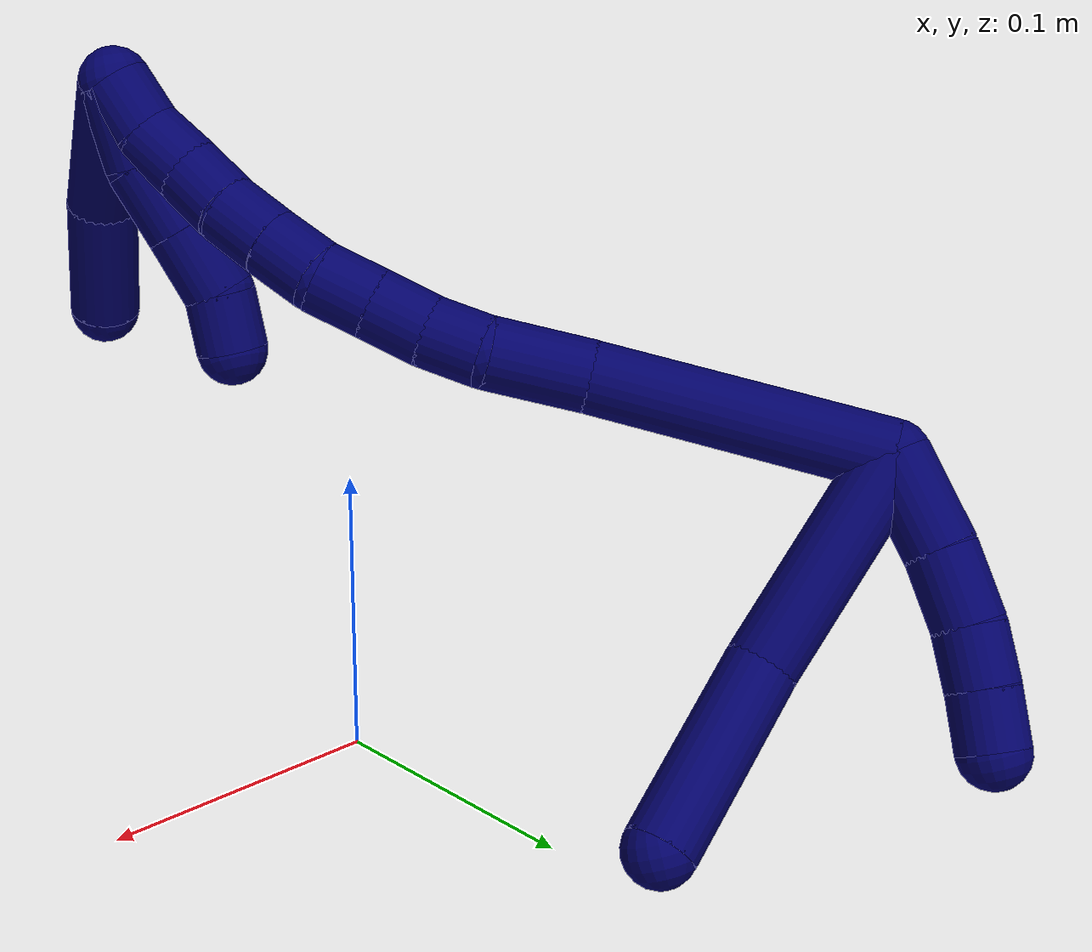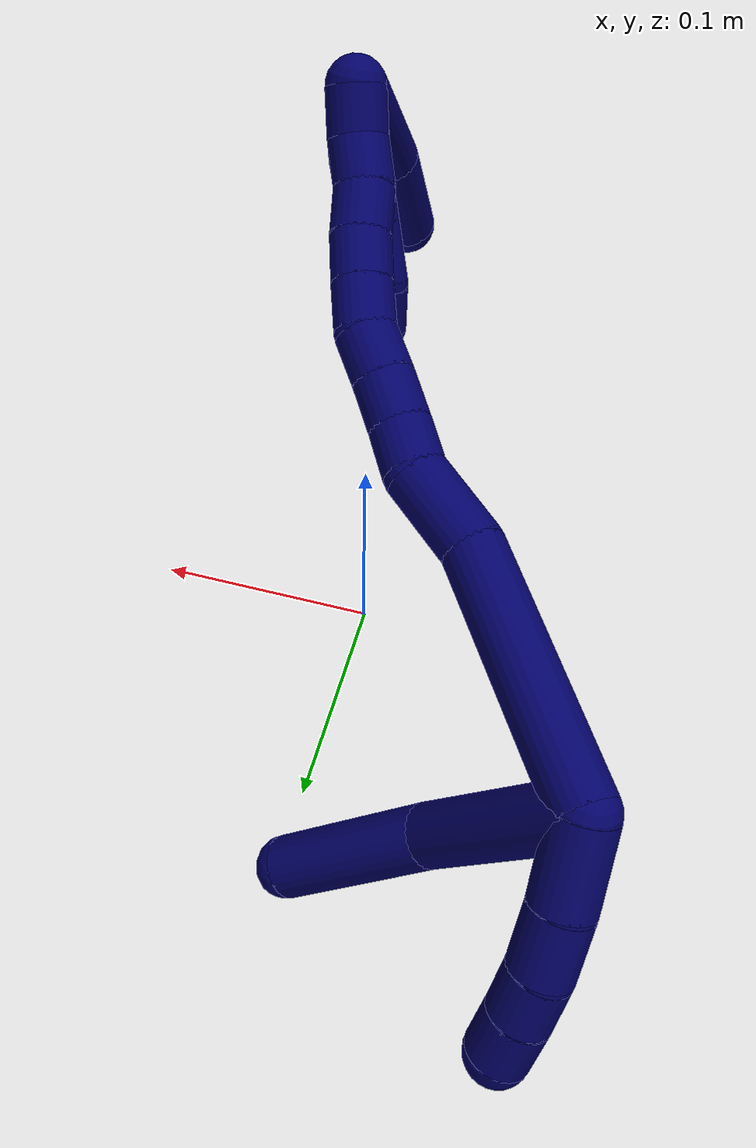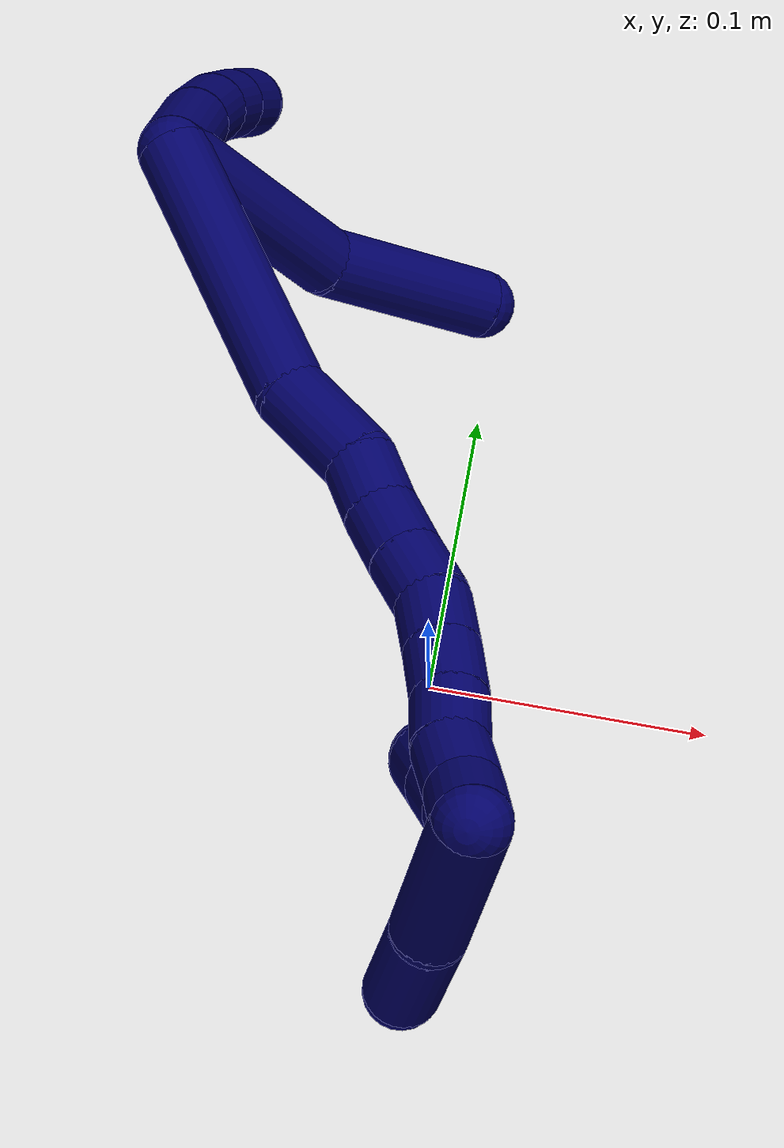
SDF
<sdf version="1.7">
 <world name="default">
  <model name="photoneo_s_sensor">
   <static>1</static>
   <pose>0 0 2 1.57079 1.57079 3.14159</pose>
   <link name="link">
    <inertial><mass>0.1</mass></inertial>
    <sensor name="sensor" type="depth">
     <update_rate>30</update_rate>
     <camera>
      <horizontal_fov>1.22</horizontal_fov>
      <image><width>1920</width><height>1200</height><format>B8G8R8</format></image>
      <clip><near>0.1</near><far>4</far></clip>
      <depth_camera><output>points</output></depth_camera>
     </camera>
     <plugin name="camera_plugin" filename="libgazebo_ros_depth_camera.so">
      <baseline>0.2</baseline>
      <alwaysOn>1</alwaysOn>
      <updateRate>0.0</updateRate>
      <cameraName>camera_ir</cameraName>
      <imageTopicName>/camera/color/image_raw</imageTopicName>
      <cameraInfoTopicName>/camera/color/camera_info</cameraInfoTopicName>
      <depthImageTopicName>/camera/depth/image_raw</depthImageTopicName>
      <depthImageCameraInfoTopicName>/camera/depth/camera_info</depthImageCameraInfoTopicName>
      <pointCloudTopicName>/camera/depth/points</pointCloudTopicName>
      <frameName>fr_optical</frameName>
      <pointCloudCutoff>0.1</pointCloudCutoff>
      <pointCloudCutoffMax>2.0</pointCloudCutoffMax>
      <distortionK1>0</distortionK1>
      <distortionK2>0</distortionK2>
      <distortionK3>0</distortionK3>
      <distortionT1>0</distortionT1>
      <distortionT2>0</distortionT2>
      <CxPrime>0</CxPrime>
      <Cx>0</Cx>
      <Cy>0</Cy>
      <focalLength>0</focalLength>
      <hackBaseline>0</hackBaseline>
     </plugin>
    </sensor>
   </link>
  </model>
  <model name="bin">
   <static>1</static>
   <link name="bottom">
    <collision name="collision-bottom">
     <pose>0 0 -0.01 0 -0 0</pose>
     <geometry><box><size>0.8 0.6 0.02</size></box></geometry>
     <surface>
      <friction><ode><mu>100</mu><mu2>100</mu2></ode></friction>
      <contact><collide_bitmask>65535</collide_bitmask></contact>
     </surface>
    </collision>
   </link>
   <link name="west_wall">
    <collision name="collision-west_wall">
     <pose>-0.41 0 0.1 0 -0 0</pose>
     <geometry><box><size>0.02 0.6 0.2</size></box></geometry>
     <surface>
      <friction><ode><mu>100</mu><mu2>100</mu2></ode></friction>
      <contact><collide_bitmask>65535</collide_bitmask></contact>
     </surface>
    </collision>
   </link>
   <link name="east_wall">
    <collision name="collision-east_wall">
     <pose>0.41 0 0.1 0 -0 0</pose>
     <geometry><box><size>0.02 0.6 0.2</size></box></geometry>
     <surface>
      <friction><ode><mu>100</mu><mu2>100</mu2></ode></friction>
      <contact><collide_bitmask>65535</collide_bitmask></contact>
     </surface>
    </collision>
   </link>
   <link name="south_wall">
    <collision name="collision-south_wall">
     <pose>0 -0.31 0.1 0 -0 0</pose>
     <geometry><box><size>0.8 0.02 0.2</size></box></geometry>
     <surface>
      <friction><ode><mu>100</mu><mu2>100</mu2></ode></friction>
      <contact><collide_bitmask>65535</collide_bitmask></contact>
     </surface>
    </collision>
   </link>
   <link name="north_wall">
    <collision name="collision-north_wall">
     <pose>0 0.31 0.1 0 -0 0</pose>
     <geometry><box><size>0.8 0.02 0.2</size></box></geometry>
     <surface>
      <friction><ode><mu>100</mu><mu2>100</mu2></ode></friction>
      <contact><collide_bitmask>65535</collide_bitmask></contact>
     </surface>
    </collision>
   </link>
  </model>
  <model name="7">
   <static>0</static>
   <link name="7">
    <collision name="collision-cylinder-e_1_2_8">
     <pose>0.029284 0.003197 -0.027603 -3.02627 0.81162 -2.87449</pose>
     <geometry><cylinder><radius>0.0125</radius><length>0.080738</length></cylinder></geometry>
     <surface>
      <friction><ode><mu>1.16</mu><mu2>1.16</mu2><slip1>0</slip1><slip2>0</slip2></ode></friction>
      <contact><ode><kp>1e+06</kp><kd>1</kd><max_vel>0</max_vel><min_depth>0.001</min_depth></ode></contact>
     </surface>
    </collision>
    <visual name="visual-cylinder-e_1_2_8">
     <pose>0.029284 0.003197 -0.027603 -3.02627 0.81162 -2.87449</pose>
     <geometry><cylinder><radius>0.0125</radius><length>0.080738</length></cylinder></geometry>
     <material><ambient>0.003922 0 0.403922 1</ambient></material>
    </visual>
    <collision name="collision-cylinder-e_2_8_6">
     <pose>0.081639 0.019745 -0.077314 -2.59834 0.729098 -1.88065</pose>
     <geometry><cylinder><radius>0.0125</radius><length>0.069262</length></cylinder></geometry>
     <surface>
      <friction><ode><mu>1.16</mu><mu2>1.16</mu2><slip1>0</slip1><slip2>0</slip2></ode></friction>
      <contact><ode><kp>1e+06</kp><kd>1</kd><max_vel>0</max_vel><min_depth>0.001</min_depth></ode></contact>
     </surface>
    </collision>
    <visual name="visual-cylinder-e_2_8_6">
     <pose>0.081639 0.019745 -0.077314 -2.59834 0.729098 -1.88065</pose>
     <geometry><cylinder><radius>0.0125</radius><length>0.069262</length></cylinder></geometry>
     <material><ambient>0.003922 0 0.403922 1</ambient></material>
    </visual>
    <collision name="collision-cylinder-e_1_2_9">
     <pose>-0.003225 0.002914 -0.01648 -2.96658 -0.190364 1.65524</pose>
     <geometry><cylinder><radius>0.0125</radius><length>0.034087</length></cylinder></geometry>
     <surface>
      <friction><ode><mu>1.16</mu><mu2>1.16</mu2><slip1>0</slip1><slip2>0</slip2></ode></friction>
      <contact><ode><kp>1e+06</kp><kd>1</kd><max_vel>0</max_vel><min_depth>0.001</min_depth></ode></contact>
     </surface>
    </collision>
    <visual name="visual-cylinder-e_1_2_9">
     <pose>-0.003225 0.002914 -0.01648 -2.96658 -0.190364 1.65524</pose>
     <geometry><cylinder><radius>0.0125</radius><length>0.034087</length></cylinder></geometry>
     <material><ambient>0.003922 0 0.403922 1</ambient></material>
    </visual>
    <collision name="collision-cylinder-e_2_9_10">
     <pose>-0.007555 0.007797 -0.045553 -2.9865 -0.086473 1.01606</pose>
     <geometry><cylinder><radius>0.0125</radius><length>0.025587</length></cylinder></geometry>
     <surface>
      <friction><ode><mu>1.16</mu><mu2>1.16</mu2><slip1>0</slip1><slip2>0</slip2></ode></friction>
      <contact><ode><kp>1e+06</kp><kd>1</kd><max_vel>0</max_vel><min_depth>0.001</min_depth></ode></contact>
     </surface>
    </collision>
    <visual name="visual-cylinder-e_2_9_10">
     <pose>-0.007555 0.007797 -0.045553 -2.9865 -0.086473 1.01606</pose>
     <geometry><cylinder><radius>0.0125</radius><length>0.025587</length></cylinder></geometry>
     <material><ambient>0.003922 0 0.403922 1</ambient></material>
    </visual>
    <collision name="collision-cylinder-e_3_10_11">
     <pose>-0.008175 0.011171 -0.06816 -3.00224 0.047903 -0.661312</pose>
     <geometry><cylinder><radius>0.0125</radius><length>0.020249</length></cylinder></geometry>
     <surface>
      <friction><ode><mu>1.16</mu><mu2>1.16</mu2><slip1>0</slip1><slip2>0</slip2></ode></friction>
      <contact><ode><kp>1e+06</kp><kd>1</kd><max_vel>0</max_vel><min_depth>0.001</min_depth></ode></contact>
     </surface>
    </collision>
    <visual name="visual-cylinder-e_3_10_11">
     <pose>-0.008175 0.011171 -0.06816 -3.00224 0.047903 -0.661312</pose>
     <geometry><cylinder><radius>0.0125</radius><length>0.020249</length></cylinder></geometry>
     <material><ambient>0.003922 0 0.403922 1</ambient></material>
    </visual>
    <collision name="collision-cylinder-e_4_11_5">
     <pose>-0.006649 0.013835 -0.088079 -3.01507 0.103883 -1.37448</pose>
     <geometry><cylinder><radius>0.0125</radius><length>0.020077</length></cylinder></geometry>
     <surface>
      <friction><ode><mu>1.16</mu><mu2>1.16</mu2><slip1>0</slip1><slip2>0</slip2></ode></friction>
      <contact><ode><kp>1e+06</kp><kd>1</kd><max_vel>0</max_vel><min_depth>0.001</min_depth></ode></contact>
     </surface>
    </collision>
    <visual name="visual-cylinder-e_4_11_5">
     <pose>-0.006649 0.013835 -0.088079 -3.01507 0.103883 -1.37448</pose>
     <geometry><cylinder><radius>0.0125</radius><length>0.020077</length></cylinder></geometry>
     <material><ambient>0.003922 0 0.403922 1</ambient></material>
    </visual>
    <collision name="collision-cylinder-e_1_2_12">
     <pose>0.044587 -0.006308 0.024621 0.250816 1.0527 0.146239</pose>
     <geometry><cylinder><radius>0.0125</radius><length>0.102644</length></cylinder></geometry>
     <surface>
      <friction><ode><mu>1.16</mu><mu2>1.16</mu2><slip1>0</slip1><slip2>0</slip2></ode></friction>
      <contact><ode><kp>1e+06</kp><kd>1</kd><max_vel>0</max_vel><min_depth>0.001</min_depth></ode></contact>
     </surface>
    </collision>
    <visual name="visual-cylinder-e_1_2_12">
     <pose>0.044587 -0.006308 0.024621 0.250816 1.0527 0.146239</pose>
     <geometry><cylinder><radius>0.0125</radius><length>0.102644</length></cylinder></geometry>
     <material><ambient>0.003922 0 0.403922 1</ambient></material>
    </visual>
    <collision name="collision-cylinder-e_2_12_13">
     <pose>0.104871 -0.009478 0.057106 -0.379693 1.0761 -0.228358</pose>
     <geometry><cylinder><radius>0.0125</radius><length>0.035672</length></cylinder></geometry>
     <surface>
      <friction><ode><mu>1.16</mu><mu2>1.16</mu2><slip1>0</slip1><slip2>0</slip2></ode></friction>
      <contact><ode><kp>1e+06</kp><kd>1</kd><max_vel>0</max_vel><min_depth>0.001</min_depth></ode></contact>
     </surface>
    </collision>
    <visual name="visual-cylinder-e_2_12_13">
     <pose>0.104871 -0.009478 0.057106 -0.379693 1.0761 -0.228358</pose>
     <geometry><cylinder><radius>0.0125</radius><length>0.035672</length></cylinder></geometry>
     <material><ambient>0.003922 0 0.403922 1</ambient></material>
    </visual>
    <collision name="collision-cylinder-e_3_13_14">
     <pose>0.128908 -0.007802 0.070656 0.251941 0.957418 0.131257</pose>
     <geometry><cylinder><radius>0.0125</radius><length>0.020395</length></cylinder></geometry>
     <surface>
      <friction><ode><mu>1.16</mu><mu2>1.16</mu2><slip1>0</slip1><slip2>0</slip2></ode></friction>
      <contact><ode><kp>1e+06</kp><kd>1</kd><max_vel>0</max_vel><min_depth>0.001</min_depth></ode></contact>
     </surface>
    </collision>
    <visual name="visual-cylinder-e_3_13_14">
     <pose>0.128908 -0.007802 0.070656 0.251941 0.957418 0.131257</pose>
     <geometry><cylinder><radius>0.0125</radius><length>0.020395</length></cylinder></geometry>
     <material><ambient>0.003922 0 0.403922 1</ambient></material>
    </visual>
    <collision name="collision-cylinder-e_4_14_15">
     <pose>0.145142 -0.009535 0.083059 0.040083 0.865391 0.018516</pose>
     <geometry><cylinder><radius>0.0125</radius><length>0.020742</length></cylinder></geometry>
     <surface>
      <friction><ode><mu>1.16</mu><mu2>1.16</mu2><slip1>0</slip1><slip2>0</slip2></ode></friction>
      <contact><ode><kp>1e+06</kp><kd>1</kd><max_vel>0</max_vel><min_depth>0.001</min_depth></ode></contact>
     </surface>
    </collision>
    <visual name="visual-cylinder-e_4_14_15">
     <pose>0.145142 -0.009535 0.083059 0.040083 0.865391 0.018516</pose>
     <geometry><cylinder><radius>0.0125</radius><length>0.020742</length></cylinder></geometry>
     <material><ambient>0.003922 0 0.403922 1</ambient></material>
    </visual>
    <collision name="collision-cylinder-e_5_15_16">
     <pose>0.160748 -0.009644 0.096295 -0.024619 0.868792 -0.011423</pose>
     <geometry><cylinder><radius>0.0125</radius><length>0.020193</length></cylinder></geometry>
     <surface>
      <friction><ode><mu>1.16</mu><mu2>1.16</mu2><slip1>0</slip1><slip2>0</slip2></ode></friction>
      <contact><ode><kp>1e+06</kp><kd>1</kd><max_vel>0</max_vel><min_depth>0.001</min_depth></ode></contact>
     </surface>
    </collision>
    <visual name="visual-cylinder-e_5_15_16">
     <pose>0.160748 -0.009644 0.096295 -0.024619 0.868792 -0.011423</pose>
     <geometry><cylinder><radius>0.0125</radius><length>0.020193</length></cylinder></geometry>
     <material><ambient>0.003922 0 0.403922 1</ambient></material>
    </visual>
    <collision name="collision-cylinder-e_6_16_17">
     <pose>0.174817 -0.011653 0.11034 0.280534 0.682022 0.100129</pose>
     <geometry><cylinder><radius>0.0125</radius><length>0.020181</length></cylinder></geometry>
     <surface>
      <friction><ode><mu>1.16</mu><mu2>1.16</mu2><slip1>0</slip1><slip2>0</slip2></ode></friction>
      <contact><ode><kp>1e+06</kp><kd>1</kd><max_vel>0</max_vel><min_depth>0.001</min_depth></ode></contact>
     </surface>
    </collision>
    <visual name="visual-cylinder-e_6_16_17">
     <pose>0.174817 -0.011653 0.11034 0.280534 0.682022 0.100129</pose>
     <geometry><cylinder><radius>0.0125</radius><length>0.020181</length></cylinder></geometry>
     <material><ambient>0.003922 0 0.403922 1</ambient></material>
    </visual>
    <collision name="collision-cylinder-e_7_17_18">
     <pose>0.187265 -0.016116 0.125533 0.290877 0.650312 0.098678</pose>
     <geometry><cylinder><radius>0.0125</radius><length>0.020106</length></cylinder></geometry>
     <surface>
      <friction><ode><mu>1.16</mu><mu2>1.16</mu2><slip1>0</slip1><slip2>0</slip2></ode></friction>
      <contact><ode><kp>1e+06</kp><kd>1</kd><max_vel>0</max_vel><min_depth>0.001</min_depth></ode></contact>
     </surface>
    </collision>
    <visual name="visual-cylinder-e_7_17_18">
     <pose>0.187265 -0.016116 0.125533 0.290877 0.650312 0.098678</pose>
     <geometry><cylinder><radius>0.0125</radius><length>0.020106</length></cylinder></geometry>
     <material><ambient>0.003922 0 0.403922 1</ambient></material>
    </visual>
    <collision name="collision-cylinder-e_8_18_19">
     <pose>0.198404 -0.02124 0.141367 0.333368 0.528924 0.09106</pose>
     <geometry><cylinder><radius>0.0125</radius><length>0.020027</length></cylinder></geometry>
     <surface>
      <friction><ode><mu>1.16</mu><mu2>1.16</mu2><slip1>0</slip1><slip2>0</slip2></ode></friction>
      <contact><ode><kp>1e+06</kp><kd>1</kd><max_vel>0</max_vel><min_depth>0.001</min_depth></ode></contact>
     </surface>
    </collision>
    <visual name="visual-cylinder-e_8_18_19">
     <pose>0.198404 -0.02124 0.141367 0.333368 0.528924 0.09106</pose>
     <geometry><cylinder><radius>0.0125</radius><length>0.020027</length></cylinder></geometry>
     <material><ambient>0.003922 0 0.403922 1</ambient></material>
    </visual>
    <collision name="collision-cylinder-e_9_19_20">
     <pose>0.209036 -0.024753 0.157829 0.082356 0.590605 0.025065</pose>
     <geometry><cylinder><radius>0.0125</radius><length>0.020037</length></cylinder></geometry>
     <surface>
      <friction><ode><mu>1.16</mu><mu2>1.16</mu2><slip1>0</slip1><slip2>0</slip2></ode></friction>
      <contact><ode><kp>1e+06</kp><kd>1</kd><max_vel>0</max_vel><min_depth>0.001</min_depth></ode></contact>
     </surface>
    </collision>
    <visual name="visual-cylinder-e_9_19_20">
     <pose>0.209036 -0.024753 0.157829 0.082356 0.590605 0.025065</pose>
     <geometry><cylinder><radius>0.0125</radius><length>0.020037</length></cylinder></geometry>
     <material><ambient>0.003922 0 0.403922 1</ambient></material>
    </visual>
    <collision name="collision-cylinder-e_10_20_1">
     <pose>0.217868 -0.025281 0.175579 -0.016556 0.331283 -0.002768</pose>
     <geometry><cylinder><radius>0.0125</radius><length>0.020002</length></cylinder></geometry>
     <surface>
      <friction><ode><mu>1.16</mu><mu2>1.16</mu2><slip1>0</slip1><slip2>0</slip2></ode></friction>
      <contact><ode><kp>1e+06</kp><kd>1</kd><max_vel>0</max_vel><min_depth>0.001</min_depth></ode></contact>
     </surface>
    </collision>
    <visual name="visual-cylinder-e_10_20_1">
     <pose>0.217868 -0.025281 0.175579 -0.016556 0.331283 -0.002768</pose>
     <geometry><cylinder><radius>0.0125</radius><length>0.020002</length></cylinder></geometry>
     <material><ambient>0.003922 0 0.403922 1</ambient></material>
    </visual>
    <collision name="collision-cylinder-e_1_1_21">
     <pose>0.22061 -0.028469 0.171047 2.90691 -0.035489 -0.298836</pose>
     <geometry><cylinder><radius>0.0125</radius><length>0.028782</length></cylinder></geometry>
     <surface>
      <friction><ode><mu>1.16</mu><mu2>1.16</mu2><slip1>0</slip1><slip2>0</slip2></ode></friction>
      <contact><ode><kp>1e+06</kp><kd>1</kd><max_vel>0</max_vel><min_depth>0.001</min_depth></ode></contact>
     </surface>
    </collision>
    <visual name="visual-cylinder-e_1_1_21">
     <pose>0.22061 -0.028469 0.171047 2.90691 -0.035489 -0.298836</pose>
     <geometry><cylinder><radius>0.0125</radius><length>0.028782</length></cylinder></geometry>
     <material><ambient>0.003922 0 0.403922 1</ambient></material>
    </visual>
    <collision name="collision-cylinder-e_2_21_22">
     <pose>0.216283 -0.034215 0.144969 2.94548 -0.300272 -1.98842</pose>
     <geometry><cylinder><radius>0.0125</radius><length>0.025808</length></cylinder></geometry>
     <surface>
      <friction><ode><mu>1.16</mu><mu2>1.16</mu2><slip1>0</slip1><slip2>0</slip2></ode></friction>
      <contact><ode><kp>1e+06</kp><kd>1</kd><max_vel>0</max_vel><min_depth>0.001</min_depth></ode></contact>
     </surface>
    </collision>
    <visual name="visual-cylinder-e_2_21_22">
     <pose>0.216283 -0.034215 0.144969 2.94548 -0.300272 -1.98842</pose>
     <geometry><cylinder><radius>0.0125</radius><length>0.025808</length></cylinder></geometry>
     <material><ambient>0.003922 0 0.403922 1</ambient></material>
    </visual>
    <collision name="collision-cylinder-e_3_22_23">
     <pose>0.20903 -0.039022 0.1211 2.94019 -0.278411 -1.89203</pose>
     <geometry><cylinder><radius>0.0125</radius><length>0.025006</length></cylinder></geometry>
     <surface>
      <friction><ode><mu>1.16</mu><mu2>1.16</mu2><slip1>0</slip1><slip2>0</slip2></ode></friction>
      <contact><ode><kp>1e+06</kp><kd>1</kd><max_vel>0</max_vel><min_depth>0.001</min_depth></ode></contact>
     </surface>
    </collision>
    <visual name="visual-cylinder-e_3_22_23">
     <pose>0.20903 -0.039022 0.1211 2.94019 -0.278411 -1.89203</pose>
     <geometry><cylinder><radius>0.0125</radius><length>0.025006</length></cylinder></geometry>
     <material><ambient>0.003922 0 0.403922 1</ambient></material>
    </visual>
    <collision name="collision-cylinder-e_4_23_4">
     <pose>0.206068 -0.043558 0.099356 2.93096 0.046483 0.432925</pose>
     <geometry><cylinder><radius>0.0125</radius><length>0.020404</length></cylinder></geometry>
     <surface>
      <friction><ode><mu>1.16</mu><mu2>1.16</mu2><slip1>0</slip1><slip2>0</slip2></ode></friction>
      <contact><ode><kp>1e+06</kp><kd>1</kd><max_vel>0</max_vel><min_depth>0.001</min_depth></ode></contact>
     </surface>
    </collision>
    <visual name="visual-cylinder-e_4_23_4">
     <pose>0.206068 -0.043558 0.099356 2.93096 0.046483 0.432925</pose>
     <geometry><cylinder><radius>0.0125</radius><length>0.020404</length></cylinder></geometry>
     <material><ambient>0.003922 0 0.403922 1</ambient></material>
    </visual>
    <collision name="collision-cylinder-e_1_1_24">
     <pose>0.231516 -0.044751 0.169154 2.25109 0.390578 0.785906</pose>
     <geometry><cylinder><radius>0.0125</radius><length>0.054607</length></cylinder></geometry>
     <surface>
      <friction><ode><mu>1.16</mu><mu2>1.16</mu2><slip1>0</slip1><slip2>0</slip2></ode></friction>
      <contact><ode><kp>1e+06</kp><kd>1</kd><max_vel>0</max_vel><min_depth>0.001</min_depth></ode></contact>
     </surface>
    </collision>
    <visual name="visual-cylinder-e_1_1_24">
     <pose>0.231516 -0.044751 0.169154 2.25109 0.390578 0.785906</pose>
     <geometry><cylinder><radius>0.0125</radius><length>0.054607</length></cylinder></geometry>
     <material><ambient>0.003922 0 0.403922 1</ambient></material>
    </visual>
    <collision name="collision-cylinder-e_2_24_3">
     <pose>0.248474 -0.078294 0.136587 2.44648 0.29338 0.774522</pose>
     <geometry><cylinder><radius>0.0125</radius><length>0.045393</length></cylinder></geometry>
     <surface>
      <friction><ode><mu>1.16</mu><mu2>1.16</mu2><slip1>0</slip1><slip2>0</slip2></ode></friction>
      <contact><ode><kp>1e+06</kp><kd>1</kd><max_vel>0</max_vel><min_depth>0.001</min_depth></ode></contact>
     </surface>
    </collision>
    <visual name="visual-cylinder-e_2_24_3">
     <pose>0.248474 -0.078294 0.136587 2.44648 0.29338 0.774522</pose>
     <geometry><cylinder><radius>0.0125</radius><length>0.045393</length></cylinder></geometry>
     <material><ambient>0.003922 0 0.403922 1</ambient></material>
    </visual>
    <collision name="collision-sphere-3">
     <pose>0.255038 -0.092209 0.119901 0 -0 0</pose>
     <geometry><sphere><radius>0.0125</radius></sphere></geometry>
     <surface>
      <friction><ode><mu>1.16</mu><mu2>1.16</mu2><slip1>0</slip1><slip2>0</slip2></ode></friction>
      <contact><ode><kp>1e+06</kp><kd>1</kd><max_vel>0</max_vel><min_depth>0.001</min_depth></ode></contact>
     </surface>
    </collision>
    <visual name="visual-sphere-3">
     <pose>0.255038 -0.092209 0.119901 0 -0 0</pose>
     <geometry><sphere><radius>0.0125</radius></sphere></geometry>
     <material><ambient>0.003922 0 0.403922 1</ambient></material>
    </visual>
    <collision name="collision-sphere-24">
     <pose>0.241911 -0.064378 0.153273 0 -0 0</pose>
     <geometry><sphere><radius>0.0125</radius></sphere></geometry>
     <surface>
      <friction><ode><mu>1.16</mu><mu2>1.16</mu2><slip1>0</slip1><slip2>0</slip2></ode></friction>
      <contact><ode><kp>1e+06</kp><kd>1</kd><max_vel>0</max_vel><min_depth>0.001</min_depth></ode></contact>
     </surface>
    </collision>
    <visual name="visual-sphere-24">
     <pose>0.241911 -0.064378 0.153273 0 -0 0</pose>
     <geometry><sphere><radius>0.0125</radius></sphere></geometry>
     <material><ambient>0.003922 0 0.403922 1</ambient></material>
    </visual>
    <collision name="collision-sphere-4">
     <pose>0.206542 -0.045688 0.08939 0 -0 0</pose>
     <geometry><sphere><radius>0.0125</radius></sphere></geometry>
     <surface>
      <friction><ode><mu>1.16</mu><mu2>1.16</mu2><slip1>0</slip1><slip2>0</slip2></ode></friction>
      <contact><ode><kp>1e+06</kp><kd>1</kd><max_vel>0</max_vel><min_depth>0.001</min_depth></ode></contact>
     </surface>
    </collision>
    <visual name="visual-sphere-4">
     <pose>0.206542 -0.045688 0.08939 0 -0 0</pose>
     <geometry><sphere><radius>0.0125</radius></sphere></geometry>
     <material><ambient>0.003922 0 0.403922 1</ambient></material>
    </visual>
    <collision name="collision-sphere-23">
     <pose>0.205594 -0.041427 0.109322 0 -0 0</pose>
     <geometry><sphere><radius>0.0125</radius></sphere></geometry>
     <surface>
      <friction><ode><mu>1.16</mu><mu2>1.16</mu2><slip1>0</slip1><slip2>0</slip2></ode></friction>
      <contact><ode><kp>1e+06</kp><kd>1</kd><max_vel>0</max_vel><min_depth>0.001</min_depth></ode></contact>
     </surface>
    </collision>
    <visual name="visual-sphere-23">
     <pose>0.205594 -0.041427 0.109322 0 -0 0</pose>
     <geometry><sphere><radius>0.0125</radius></sphere></geometry>
     <material><ambient>0.003922 0 0.403922 1</ambient></material>
    </visual>
    <collision name="collision-sphere-22">
     <pose>0.212466 -0.036617 0.132879 0 -0 0</pose>
     <geometry><sphere><radius>0.0125</radius></sphere></geometry>
     <surface>
      <friction><ode><mu>1.16</mu><mu2>1.16</mu2><slip1>0</slip1><slip2>0</slip2></ode></friction>
      <contact><ode><kp>1e+06</kp><kd>1</kd><max_vel>0</max_vel><min_depth>0.001</min_depth></ode></contact>
     </surface>
    </collision>
    <visual name="visual-sphere-22">
     <pose>0.212466 -0.036617 0.132879 0 -0 0</pose>
     <geometry><sphere><radius>0.0125</radius></sphere></geometry>
     <material><ambient>0.003922 0 0.403922 1</ambient></material>
    </visual>
    <collision name="collision-sphere-21">
     <pose>0.220099 -0.031813 0.157059 0 -0 0</pose>
     <geometry><sphere><radius>0.0125</radius></sphere></geometry>
     <surface>
      <friction><ode><mu>1.16</mu><mu2>1.16</mu2><slip1>0</slip1><slip2>0</slip2></ode></friction>
      <contact><ode><kp>1e+06</kp><kd>1</kd><max_vel>0</max_vel><min_depth>0.001</min_depth></ode></contact>
     </surface>
    </collision>
    <visual name="visual-sphere-21">
     <pose>0.220099 -0.031813 0.157059 0 -0 0</pose>
     <geometry><sphere><radius>0.0125</radius></sphere></geometry>
     <material><ambient>0.003922 0 0.403922 1</ambient></material>
    </visual>
    <collision name="collision-sphere-1">
     <pose>0.221121 -0.025125 0.185034 0 -0 0</pose>
     <geometry><sphere><radius>0.0125</radius></sphere></geometry>
     <surface>
      <friction><ode><mu>1.16</mu><mu2>1.16</mu2><slip1>0</slip1><slip2>0</slip2></ode></friction>
      <contact><ode><kp>1e+06</kp><kd>1</kd><max_vel>0</max_vel><min_depth>0.001</min_depth></ode></contact>
     </surface>
    </collision>
    <visual name="visual-sphere-1">
     <pose>0.221121 -0.025125 0.185034 0 -0 0</pose>
     <geometry><sphere><radius>0.0125</radius></sphere></geometry>
     <material><ambient>0.003922 0 0.403922 1</ambient></material>
    </visual>
    <collision name="collision-sphere-11">
     <pose>-0.00769 0.012575 -0.078175 0 -0 0</pose>
     <geometry><sphere><radius>0.0125</radius></sphere></geometry>
     <surface>
      <friction><ode><mu>1.16</mu><mu2>1.16</mu2><slip1>0</slip1><slip2>0</slip2></ode></friction>
      <contact><ode><kp>1e+06</kp><kd>1</kd><max_vel>0</max_vel><min_depth>0.001</min_depth></ode></contact>
     </surface>
    </collision>
    <visual name="visual-sphere-11">
     <pose>-0.00769 0.012575 -0.078175 0 -0 0</pose>
     <geometry><sphere><radius>0.0125</radius></sphere></geometry>
     <material><ambient>0.003922 0 0.403922 1</ambient></material>
    </visual>
    <collision name="collision-sphere-10">
     <pose>-0.00866 0.009766 -0.058145 0 -0 0</pose>
     <geometry><sphere><radius>0.0125</radius></sphere></geometry>
     <surface>
      <friction><ode><mu>1.16</mu><mu2>1.16</mu2><slip1>0</slip1><slip2>0</slip2></ode></friction>
      <contact><ode><kp>1e+06</kp><kd>1</kd><max_vel>0</max_vel><min_depth>0.001</min_depth></ode></contact>
     </surface>
    </collision>
    <visual name="visual-sphere-10">
     <pose>-0.00866 0.009766 -0.058145 0 -0 0</pose>
     <geometry><sphere><radius>0.0125</radius></sphere></geometry>
     <material><ambient>0.003922 0 0.403922 1</ambient></material>
    </visual>
    <collision name="collision-sphere-6">
     <pose>0.10471 0.033096 -0.099422 0 -0 0</pose>
     <geometry><sphere><radius>0.0125</radius></sphere></geometry>
     <surface>
      <friction><ode><mu>1.16</mu><mu2>1.16</mu2><slip1>0</slip1><slip2>0</slip2></ode></friction>
      <contact><ode><kp>1e+06</kp><kd>1</kd><max_vel>0</max_vel><min_depth>0.001</min_depth></ode></contact>
     </surface>
    </collision>
    <visual name="visual-sphere-6">
     <pose>0.10471 0.033096 -0.099422 0 -0 0</pose>
     <geometry><sphere><radius>0.0125</radius></sphere></geometry>
     <material><ambient>0.003922 0 0.403922 1</ambient></material>
    </visual>
    <collision name="collision-sphere-9">
     <pose>-0.00645 0.005828 -0.03296 0 -0 0</pose>
     <geometry><sphere><radius>0.0125</radius></sphere></geometry>
     <surface>
      <friction><ode><mu>1.16</mu><mu2>1.16</mu2><slip1>0</slip1><slip2>0</slip2></ode></friction>
      <contact><ode><kp>1e+06</kp><kd>1</kd><max_vel>0</max_vel><min_depth>0.001</min_depth></ode></contact>
     </surface>
    </collision>
    <visual name="visual-sphere-9">
     <pose>-0.00645 0.005828 -0.03296 0 -0 0</pose>
     <geometry><sphere><radius>0.0125</radius></sphere></geometry>
     <material><ambient>0.003922 0 0.403922 1</ambient></material>
    </visual>
    <collision name="collision-sphere-2">
     <geometry><sphere><radius>0.0125</radius></sphere></geometry>
     <surface>
      <friction><ode><mu>1.16</mu><mu2>1.16</mu2><slip1>0</slip1><slip2>0</slip2></ode></friction>
      <contact><ode><kp>1e+06</kp><kd>1</kd><max_vel>0</max_vel><min_depth>0.001</min_depth></ode></contact>
     </surface>
    </collision>
    <visual name="visual-sphere-2">
     <geometry><sphere><radius>0.0125</radius></sphere></geometry>
     <material><ambient>0.003922 0 0.403922 1</ambient></material>
    </visual>
    <collision name="collision-sphere-19">
     <pose>0.203457 -0.024069 0.149536 0 -0 0</pose>
     <geometry><sphere><radius>0.0125</radius></sphere></geometry>
     <surface>
      <friction><ode><mu>1.16</mu><mu2>1.16</mu2><slip1>0</slip1><slip2>0</slip2></ode></friction>
      <contact><ode><kp>1e+06</kp><kd>1</kd><max_vel>0</max_vel><min_depth>0.001</min_depth></ode></contact>
     </surface>
    </collision>
    <visual name="visual-sphere-19">
     <pose>0.203457 -0.024069 0.149536 0 -0 0</pose>
     <geometry><sphere><radius>0.0125</radius></sphere></geometry>
     <material><ambient>0.003922 0 0.403922 1</ambient></material>
    </visual>
    <collision name="collision-sphere-8">
     <pose>0.058568 0.006395 -0.055205 0 -0 0</pose>
     <geometry><sphere><radius>0.0125</radius></sphere></geometry>
     <surface>
      <friction><ode><mu>1.16</mu><mu2>1.16</mu2><slip1>0</slip1><slip2>0</slip2></ode></friction>
      <contact><ode><kp>1e+06</kp><kd>1</kd><max_vel>0</max_vel><min_depth>0.001</min_depth></ode></contact>
     </surface>
    </collision>
    <visual name="visual-sphere-8">
     <pose>0.058568 0.006395 -0.055205 0 -0 0</pose>
     <geometry><sphere><radius>0.0125</radius></sphere></geometry>
     <material><ambient>0.003922 0 0.403922 1</ambient></material>
    </visual>
    <collision name="collision-sphere-5">
     <pose>-0.005608 0.015095 -0.097984 0 -0 0</pose>
     <geometry><sphere><radius>0.0125</radius></sphere></geometry>
     <surface>
      <friction><ode><mu>1.16</mu><mu2>1.16</mu2><slip1>0</slip1><slip2>0</slip2></ode></friction>
      <contact><ode><kp>1e+06</kp><kd>1</kd><max_vel>0</max_vel><min_depth>0.001</min_depth></ode></contact>
     </surface>
    </collision>
    <visual name="visual-sphere-5">
     <pose>-0.005608 0.015095 -0.097984 0 -0 0</pose>
     <geometry><sphere><radius>0.0125</radius></sphere></geometry>
     <material><ambient>0.003922 0 0.403922 1</ambient></material>
    </visual>
    <collision name="collision-sphere-12">
     <pose>0.089174 -0.012616 0.049241 0 -0 0</pose>
     <geometry><sphere><radius>0.0125</radius></sphere></geometry>
     <surface>
      <friction><ode><mu>1.16</mu><mu2>1.16</mu2><slip1>0</slip1><slip2>0</slip2></ode></friction>
      <contact><ode><kp>1e+06</kp><kd>1</kd><max_vel>0</max_vel><min_depth>0.001</min_depth></ode></contact>
     </surface>
    </collision>
    <visual name="visual-sphere-12">
     <pose>0.089174 -0.012616 0.049241 0 -0 0</pose>
     <geometry><sphere><radius>0.0125</radius></sphere></geometry>
     <material><ambient>0.003922 0 0.403922 1</ambient></material>
    </visual>
    <collision name="collision-sphere-13">
     <pose>0.120569 -0.006339 0.064971 0 -0 0</pose>
     <geometry><sphere><radius>0.0125</radius></sphere></geometry>
     <surface>
      <friction><ode><mu>1.16</mu><mu2>1.16</mu2><slip1>0</slip1><slip2>0</slip2></ode></friction>
      <contact><ode><kp>1e+06</kp><kd>1</kd><max_vel>0</max_vel><min_depth>0.001</min_depth></ode></contact>
     </surface>
    </collision>
    <visual name="visual-sphere-13">
     <pose>0.120569 -0.006339 0.064971 0 -0 0</pose>
     <geometry><sphere><radius>0.0125</radius></sphere></geometry>
     <material><ambient>0.003922 0 0.403922 1</ambient></material>
    </visual>
    <collision name="collision-sphere-14">
     <pose>0.137246 -0.009266 0.07634 0 -0 0</pose>
     <geometry><sphere><radius>0.0125</radius></sphere></geometry>
     <surface>
      <friction><ode><mu>1.16</mu><mu2>1.16</mu2><slip1>0</slip1><slip2>0</slip2></ode></friction>
      <contact><ode><kp>1e+06</kp><kd>1</kd><max_vel>0</max_vel><min_depth>0.001</min_depth></ode></contact>
     </surface>
    </collision>
    <visual name="visual-sphere-14">
     <pose>0.137246 -0.009266 0.07634 0 -0 0</pose>
     <geometry><sphere><radius>0.0125</radius></sphere></geometry>
     <material><ambient>0.003922 0 0.403922 1</ambient></material>
    </visual>
    <collision name="collision-sphere-15">
     <pose>0.153038 -0.009805 0.089778 0 -0 0</pose>
     <geometry><sphere><radius>0.0125</radius></sphere></geometry>
     <surface>
      <friction><ode><mu>1.16</mu><mu2>1.16</mu2><slip1>0</slip1><slip2>0</slip2></ode></friction>
      <contact><ode><kp>1e+06</kp><kd>1</kd><max_vel>0</max_vel><min_depth>0.001</min_depth></ode></contact>
     </surface>
    </collision>
    <visual name="visual-sphere-15">
     <pose>0.153038 -0.009805 0.089778 0 -0 0</pose>
     <geometry><sphere><radius>0.0125</radius></sphere></geometry>
     <material><ambient>0.003922 0 0.403922 1</ambient></material>
    </visual>
    <collision name="collision-sphere-16">
     <pose>0.168457 -0.009484 0.102813 0 -0 0</pose>
     <geometry><sphere><radius>0.0125</radius></sphere></geometry>
     <surface>
      <friction><ode><mu>1.16</mu><mu2>1.16</mu2><slip1>0</slip1><slip2>0</slip2></ode></friction>
      <contact><ode><kp>1e+06</kp><kd>1</kd><max_vel>0</max_vel><min_depth>0.001</min_depth></ode></contact>
     </surface>
    </collision>
    <visual name="visual-sphere-16">
     <pose>0.168457 -0.009484 0.102813 0 -0 0</pose>
     <geometry><sphere><radius>0.0125</radius></sphere></geometry>
     <material><ambient>0.003922 0 0.403922 1</ambient></material>
    </visual>
    <collision name="collision-sphere-17">
     <pose>0.181178 -0.013821 0.117867 0 -0 0</pose>
     <geometry><sphere><radius>0.0125</radius></sphere></geometry>
     <surface>
      <friction><ode><mu>1.16</mu><mu2>1.16</mu2><slip1>0</slip1><slip2>0</slip2></ode></friction>
      <contact><ode><kp>1e+06</kp><kd>1</kd><max_vel>0</max_vel><min_depth>0.001</min_depth></ode></contact>
     </surface>
    </collision>
    <visual name="visual-sphere-17">
     <pose>0.181178 -0.013821 0.117867 0 -0 0</pose>
     <geometry><sphere><radius>0.0125</radius></sphere></geometry>
     <material><ambient>0.003922 0 0.403922 1</ambient></material>
    </visual>
    <collision name="collision-sphere-18">
     <pose>0.193351 -0.018411 0.133198 0 -0 0</pose>
     <geometry><sphere><radius>0.0125</radius></sphere></geometry>
     <surface>
      <friction><ode><mu>1.16</mu><mu2>1.16</mu2><slip1>0</slip1><slip2>0</slip2></ode></friction>
      <contact><ode><kp>1e+06</kp><kd>1</kd><max_vel>0</max_vel><min_depth>0.001</min_depth></ode></contact>
     </surface>
    </collision>
    <visual name="visual-sphere-18">
     <pose>0.193351 -0.018411 0.133198 0 -0 0</pose>
     <geometry><sphere><radius>0.0125</radius></sphere></geometry>
     <material><ambient>0.003922 0 0.403922 1</ambient></material>
    </visual>
    <collision name="collision-sphere-20">
     <pose>0.214615 -0.025438 0.166123 0 -0 0</pose>
     <geometry><sphere><radius>0.0125</radius></sphere></geometry>
     <surface>
      <friction><ode><mu>1.16</mu><mu2>1.16</mu2><slip1>0</slip1><slip2>0</slip2></ode></friction>
      <contact><ode><kp>1e+06</kp><kd>1</kd><max_vel>0</max_vel><min_depth>0.001</min_depth></ode></contact>
     </surface>
    </collision>
    <visual name="visual-sphere-20">
     <pose>0.214615 -0.025438 0.166123 0 -0 0</pose>
     <geometry><sphere><radius>0.0125</radius></sphere></geometry>
     <material><ambient>0.003922 0 0.403922 1</ambient></material>
    </visual>
    <inertial>
     <pose>0.119623 -0.014213 0.054169 0 -0 0</pose>
     <mass>0.75</mass>
     <inertia>
      <ixx>6.1e-05</ixx>
      <ixy>0</ixy>
      <ixz>0</ixz>
      <iyy>0.00015</iyy>
      <iyz>0</iyz>
      <izz>-0.000154</izz>
     </inertia>
    </inertial>
   </link>
   <pose>-0.11285 0.141302 0.117958 0.362303 0.231596 -0.675868</pose>
  </model>
 </world>
</sdf>
